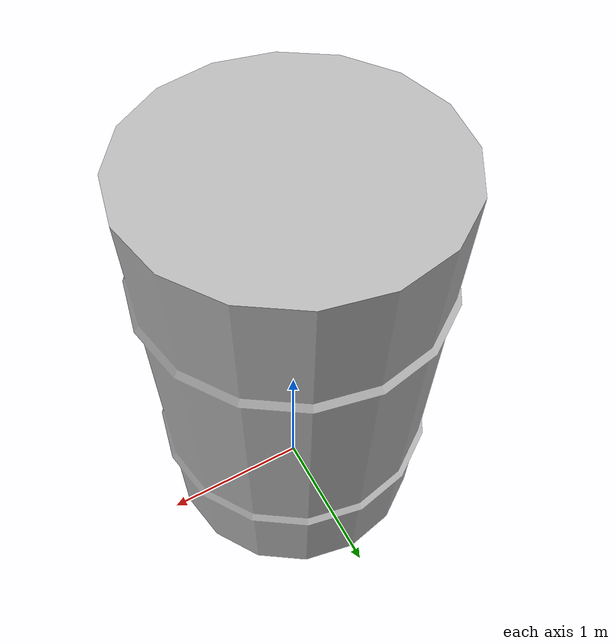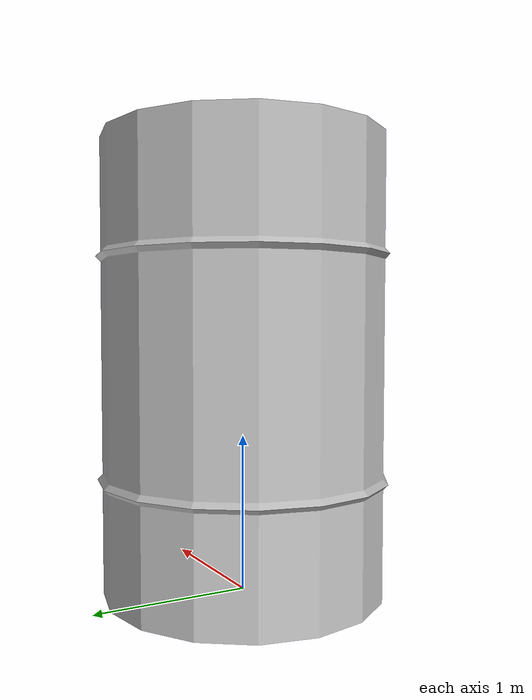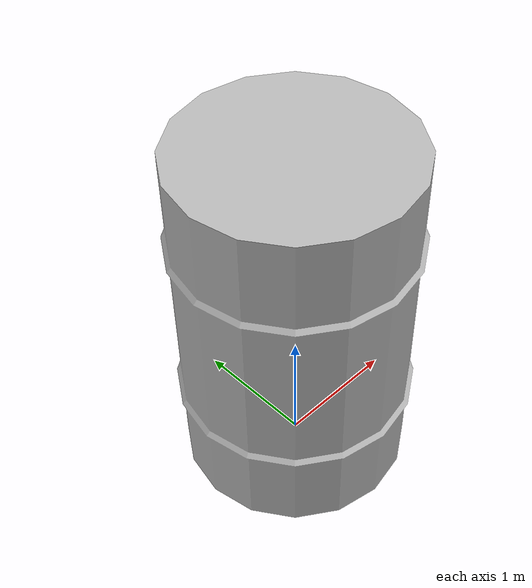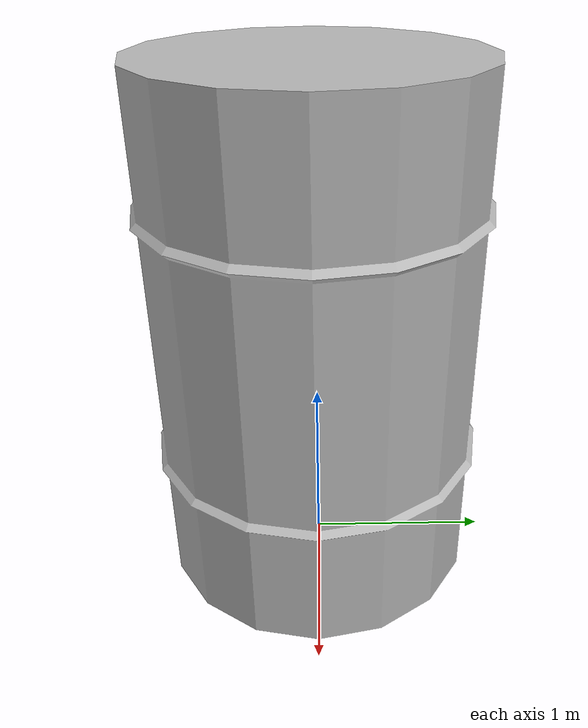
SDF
<?xml version="1.0" ?>
<sdf version="1.6">
    <model name='acid_barrel'>
      <pose frame=''>0 0 0 0 -0 1.57</pose>
      <static>0</static>
      <link name='body'>
        <inertial>
          <mass>1</mass>
          <inertia>
            <ixx>0.166667</ixx>
            <ixy>0</ixy>
            <ixz>0</ixz>
            <iyy>0.166667</iyy>
            <iyz>0</iyz>
            <izz>0.166667</izz>
          </inertia>
        </inertial>
        <collision name='collision'>
          <geometry>
            <mesh>
              <uri>model://explosive_barrel/meshes/explosive_barrel.dae</uri>
            </mesh>
          </geometry>
          <max_contacts>10</max_contacts>
          <surface>
            <contact>
              <ode/>
            </contact>
            <bounce/>
            <friction>
              <torsional>
                <ode/>
              </torsional>
              <ode/>
            </friction>
          </surface>
        </collision>
        <visual name='visual'>
          <geometry>
            <mesh>
              <uri>model://explosive_barrel/meshes/explosive_barrel.dae</uri>
            </mesh>
          </geometry>
        </visual>
        <self_collide>0</self_collide>
        <enable_wind>0</enable_wind>
        <kinematic>0</kinematic>
        <cast_shadows>false</cast_shadows>
      </link>
    </model>
</sdf>
